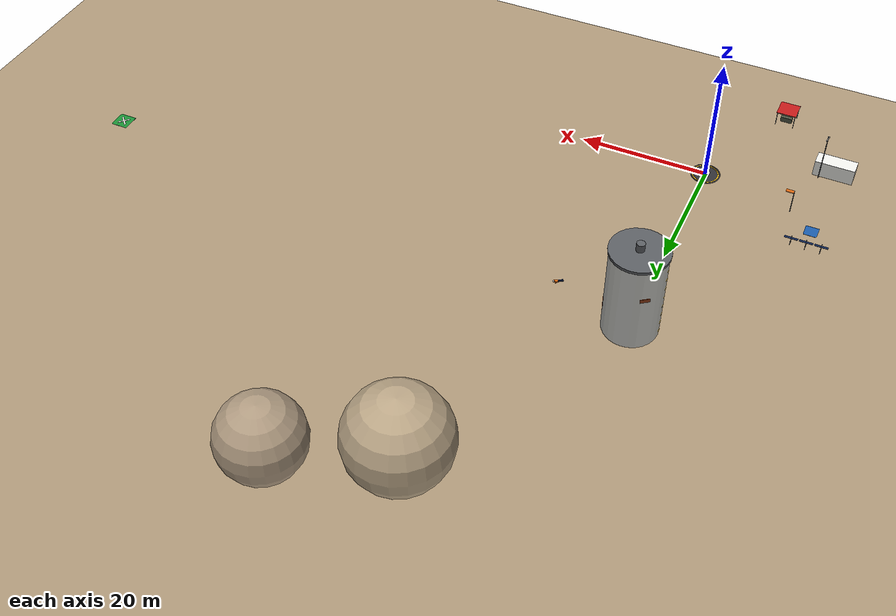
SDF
<sdf version="1.9">
 <world name="phoenix_mine">
  <model name="ground_plane">
   <static>true</static>
   <pose>0 0 -12 0 0 0</pose>
   <link name="link">
    <collision name="collision">
     <geometry><plane><normal>0 0 1</normal><size>1 1</size></plane></geometry>
    </collision>
    <visual name="visual">
     <geometry><plane><normal>0 0 1</normal><size>1500 1500</size></plane></geometry>
     <material>
      <ambient>0.66 0.58 0.46 1</ambient>
      <diffuse>0.66 0.58 0.46 1</diffuse>
      <specular>0.05 0.05 0.05 1</specular>
     </material>
    </visual>
   </link>
  </model>
  <model name="victim_thermal_target">
   <static>true</static>
   <pose>16 20 -12 0 0 0.6</pose>
   <link name="link">
    <visual name="v_box_1">
     <pose>0 0 0.12 0 0 0</pose>
     <geometry><box><size>0.55 0.36 0.22</size></box></geometry>
     <material>
      <ambient>0.950 0.450 0.080 1</ambient>
      <diffuse>0.950 0.450 0.080 1</diffuse>
      <specular>0.08 0.08 0.08 1</specular>
     </material>
     <plugin filename="gz-sim-thermal-system" name="gz::sim::systems::Thermal">
      <temperature>310.0</temperature>
     </plugin>
    </visual>
    <collision name="c_box_1">
     <pose>0 0 0.12 0 0 0</pose>
     <geometry><box><size>0.55 0.36 0.22</size></box></geometry>
    </collision>
    <visual name="v_box_2">
     <pose>-0.68 0.09 0.08 0 0 0</pose>
     <geometry><box><size>0.8 0.14 0.14</size></box></geometry>
     <material>
      <ambient>0.120 0.220 0.450 1</ambient>
      <diffuse>0.120 0.220 0.450 1</diffuse>
      <specular>0.08 0.08 0.08 1</specular>
     </material>
     <plugin filename="gz-sim-thermal-system" name="gz::sim::systems::Thermal">
      <temperature>306.0</temperature>
     </plugin>
    </visual>
    <collision name="c_box_2">
     <pose>-0.68 0.09 0.08 0 0 0</pose>
     <geometry><box><size>0.8 0.14 0.14</size></box></geometry>
    </collision>
    <visual name="v_box_3">
     <pose>-0.68 -0.09 0.08 0 0 0.12</pose>
     <geometry><box><size>0.8 0.14 0.14</size></box></geometry>
     <material>
      <ambient>0.120 0.220 0.450 1</ambient>
      <diffuse>0.120 0.220 0.450 1</diffuse>
      <specular>0.08 0.08 0.08 1</specular>
     </material>
     <plugin filename="gz-sim-thermal-system" name="gz::sim::systems::Thermal">
      <temperature>306.0</temperature>
     </plugin>
    </visual>
    <collision name="c_box_3">
     <pose>-0.68 -0.09 0.08 0 0 0.12</pose>
     <geometry><box><size>0.8 0.14 0.14</size></box></geometry>
    </collision>
    <visual name="v_box_4">
     <pose>0.05 0.27 0.07 0 0 0.3</pose>
     <geometry><box><size>0.55 0.1 0.1</size></box></geometry>
     <material>
      <ambient>0.950 0.450 0.080 1</ambient>
      <diffuse>0.950 0.450 0.080 1</diffuse>
      <specular>0.08 0.08 0.08 1</specular>
     </material>
     <plugin filename="gz-sim-thermal-system" name="gz::sim::systems::Thermal">
      <temperature>308.0</temperature>
     </plugin>
    </visual>
    <collision name="c_box_4">
     <pose>0.05 0.27 0.07 0 0 0.3</pose>
     <geometry><box><size>0.55 0.1 0.1</size></box></geometry>
    </collision>
    <visual name="v_box_5">
     <pose>0.05 -0.27 0.07 0 0 -0.2</pose>
     <geometry><box><size>0.55 0.1 0.1</size></box></geometry>
     <material>
      <ambient>0.950 0.450 0.080 1</ambient>
      <diffuse>0.950 0.450 0.080 1</diffuse>
      <specular>0.08 0.08 0.08 1</specular>
     </material>
     <plugin filename="gz-sim-thermal-system" name="gz::sim::systems::Thermal">
      <temperature>308.0</temperature>
     </plugin>
    </visual>
    <collision name="c_box_5">
     <pose>0.05 -0.27 0.07 0 0 -0.2</pose>
     <geometry><box><size>0.55 0.1 0.1</size></box></geometry>
    </collision>
    <visual name="v_sph_6">
     <pose>0.42 0 0.12 0 0 0</pose>
     <geometry><sphere><radius>0.11</radius></sphere></geometry>
     <material>
      <ambient>0.800 0.620 0.480 1</ambient>
      <diffuse>0.800 0.620 0.480 1</diffuse>
      <specular>0.08 0.08 0.08 1</specular>
     </material>
     <plugin filename="gz-sim-thermal-system" name="gz::sim::systems::Thermal">
      <temperature>310.0</temperature>
     </plugin>
    </visual>
    <collision name="c_sph_6">
     <pose>0.42 0 0.12 0 0 0</pose>
     <geometry><sphere><radius>0.11</radius></sphere></geometry>
    </collision>
    <visual name="v_sph_7">
     <pose>0.47 0 0.17 0 0 0</pose>
     <geometry><sphere><radius>0.13</radius></sphere></geometry>
     <material>
      <ambient>0.920 0.920 0.900 1</ambient>
      <diffuse>0.920 0.920 0.900 1</diffuse>
      <specular>0.08 0.08 0.08 1</specular>
     </material>
     <plugin filename="gz-sim-thermal-system" name="gz::sim::systems::Thermal">
      <temperature>300</temperature>
     </plugin>
    </visual>
    <visual name="v_box_8">
     <pose>0.6 0 0.17 0 0 0</pose>
     <geometry><box><size>0.1 0.06 0.04</size></box></geometry>
     <material>
      <ambient>0.920 0.920 0.900 1</ambient>
      <diffuse>0.920 0.920 0.900 1</diffuse>
      <specular>0.08 0.08 0.08 1</specular>
      <emissive>1.000 1.000 0.800 1</emissive>
     </material>
    </visual>
   </link>
  </model>
  <model name="surface_base">
   <static>true</static>
   <link name="link">
    <visual name="v_cyl_1">
     <pose>0 0 0.01 0 0 0</pose>
     <geometry><cylinder><radius>2.3</radius><length>0.02</length></cylinder></geometry>
     <material>
      <ambient>0.180 0.180 0.200 1</ambient>
      <diffuse>0.180 0.180 0.200 1</diffuse>
      <specular>0.08 0.08 0.08 1</specular>
     </material>
    </visual>
    <visual name="v_cyl_2">
     <pose>0 0 0.015 0 0 0</pose>
     <geometry><cylinder><radius>2.1</radius><length>0.02</length></cylinder></geometry>
     <material>
      <ambient>0.950 0.750 0.100 1</ambient>
      <diffuse>0.950 0.750 0.100 1</diffuse>
      <specular>0.08 0.08 0.08 1</specular>
     </material>
    </visual>
    <visual name="v_cyl_3">
     <pose>0 0 0.02 0 0 0</pose>
     <geometry><cylinder><radius>1.9</radius><length>0.02</length></cylinder></geometry>
     <material>
      <ambient>0.180 0.180 0.200 1</ambient>
      <diffuse>0.180 0.180 0.200 1</diffuse>
      <specular>0.08 0.08 0.08 1</specular>
     </material>
    </visual>
    <visual name="v_box_4">
     <pose>-0.45 0 0.032 0 0 0</pose>
     <geometry><box><size>0.25 1.4 0.01</size></box></geometry>
     <material>
      <ambient>0.920 0.920 0.900 1</ambient>
      <diffuse>0.920 0.920 0.900 1</diffuse>
      <specular>0.08 0.08 0.08 1</specular>
     </material>
    </visual>
    <visual name="v_box_5">
     <pose>0.45 0 0.032 0 0 0</pose>
     <geometry><box><size>0.25 1.4 0.01</size></box></geometry>
     <material>
      <ambient>0.920 0.920 0.900 1</ambient>
      <diffuse>0.920 0.920 0.900 1</diffuse>
      <specular>0.08 0.08 0.08 1</specular>
     </material>
    </visual>
    <visual name="v_box_6">
     <pose>0 0 0.032 0 0 0</pose>
     <geometry><box><size>0.65 0.22 0.01</size></box></geometry>
     <material>
      <ambient>0.920 0.920 0.900 1</ambient>
      <diffuse>0.920 0.920 0.900 1</diffuse>
      <specular>0.08 0.08 0.08 1</specular>
     </material>
    </visual>
    <visual name="v_box_7">
     <pose>-18 -8 1.3 0 0 0</pose>
     <geometry><box><size>6.1 2.4 2.6</size></box></geometry>
     <material>
      <ambient>0.920 0.920 0.900 1</ambient>
      <diffuse>0.920 0.920 0.900 1</diffuse>
      <specular>0.08 0.08 0.08 1</specular>
     </material>
    </visual>
    <collision name="c_box_7">
     <pose>-18 -8 1.3 0 0 0</pose>
     <geometry><box><size>6.1 2.4 2.6</size></box></geometry>
    </collision>
    <visual name="v_box_8">
     <pose>-14.93 -8.4 1 0 0 0</pose>
     <geometry><box><size>0.05 0.9 2</size></box></geometry>
     <material>
      <ambient>0.120 0.220 0.450 1</ambient>
      <diffuse>0.120 0.220 0.450 1</diffuse>
      <specular>0.08 0.08 0.08 1</specular>
     </material>
    </visual>
    <visual name="v_cyl_9">
     <pose>-16 -6.4 4 0 0 0</pose>
     <geometry><cylinder><radius>0.06</radius><length>8.0</length></cylinder></geometry>
     <material>
      <ambient>0.350 0.360 0.380 1</ambient>
      <diffuse>0.350 0.360 0.380 1</diffuse>
      <specular>0.08 0.08 0.08 1</specular>
     </material>
    </visual>
    <collision name="c_cyl_9">
     <pose>-16 -6.4 4 0 0 0</pose>
     <geometry><cylinder><radius>0.06</radius><length>8.0</length></cylinder></geometry>
    </collision>
    <visual name="v_cyl_10">
     <pose>-16 -6.4 7.6 0 1.2 0</pose>
     <geometry><cylinder><radius>0.4</radius><length>0.08</length></cylinder></geometry>
     <material>
      <ambient>0.920 0.920 0.900 1</ambient>
      <diffuse>0.920 0.920 0.900 1</diffuse>
      <specular>0.08 0.08 0.08 1</specular>
     </material>
    </visual>
    <collision name="c_cyl_10">
     <pose>-16 -6.4 7.6 0 1.2 0</pose>
     <geometry><cylinder><radius>0.4</radius><length>0.08</length></cylinder></geometry>
    </collision>
    <visual name="v_box_11">
     <pose>-20.2 10 1.3 0.5236 0 0</pose>
     <geometry><box><size>2 1.1 0.05</size></box></geometry>
     <material>
      <ambient>0.120 0.220 0.450 1</ambient>
      <diffuse>0.120 0.220 0.450 1</diffuse>
      <specular>0.08 0.08 0.08 1</specular>
     </material>
    </visual>
    <collision name="c_box_11">
     <pose>-20.2 10 1.3 0.5236 0 0</pose>
     <geometry><box><size>2 1.1 0.05</size></box></geometry>
    </collision>
    <visual name="v_cyl_12">
     <pose>-20.2 10.25 0.6 0 0 0</pose>
     <geometry><cylinder><radius>0.04</radius><length>1.0</length></cylinder></geometry>
     <material>
      <ambient>0.350 0.360 0.380 1</ambient>
      <diffuse>0.350 0.360 0.380 1</diffuse>
      <specular>0.08 0.08 0.08 1</specular>
     </material>
    </visual>
    <collision name="c_cyl_12">
     <pose>-20.2 10.25 0.6 0 0 0</pose>
     <geometry><cylinder><radius>0.04</radius><length>1.0</length></cylinder></geometry>
    </collision>
    <visual name="v_cyl_13">
     <pose>-20.2 9.75 0.8 0 0 0</pose>
     <geometry><cylinder><radius>0.04</radius><length>1.4</length></cylinder></geometry>
     <material>
      <ambient>0.350 0.360 0.380 1</ambient>
      <diffuse>0.350 0.360 0.380 1</diffuse>
      <specular>0.08 0.08 0.08 1</specular>
     </material>
    </visual>
    <collision name="c_cyl_13">
     <pose>-20.2 9.75 0.8 0 0 0</pose>
     <geometry><cylinder><radius>0.04</radius><length>1.4</length></cylinder></geometry>
    </collision>
    <visual name="v_box_14">
     <pose>-18 10 1.3 0.5236 0 0</pose>
     <geometry><box><size>2 1.1 0.05</size></box></geometry>
     <material>
      <ambient>0.120 0.220 0.450 1</ambient>
      <diffuse>0.120 0.220 0.450 1</diffuse>
      <specular>0.08 0.08 0.08 1</specular>
     </material>
    </visual>
    <collision name="c_box_14">
     <pose>-18 10 1.3 0.5236 0 0</pose>
     <geometry><box><size>2 1.1 0.05</size></box></geometry>
    </collision>
    <visual name="v_cyl_15">
     <pose>-18 10.25 0.6 0 0 0</pose>
     <geometry><cylinder><radius>0.04</radius><length>1.0</length></cylinder></geometry>
     <material>
      <ambient>0.350 0.360 0.380 1</ambient>
      <diffuse>0.350 0.360 0.380 1</diffuse>
      <specular>0.08 0.08 0.08 1</specular>
     </material>
    </visual>
    <collision name="c_cyl_15">
     <pose>-18 10.25 0.6 0 0 0</pose>
     <geometry><cylinder><radius>0.04</radius><length>1.0</length></cylinder></geometry>
    </collision>
    <visual name="v_cyl_16">
     <pose>-18 9.75 0.8 0 0 0</pose>
     <geometry><cylinder><radius>0.04</radius><length>1.4</length></cylinder></geometry>
     <material>
      <ambient>0.350 0.360 0.380 1</ambient>
      <diffuse>0.350 0.360 0.380 1</diffuse>
      <specular>0.08 0.08 0.08 1</specular>
     </material>
    </visual>
    <collision name="c_cyl_16">
     <pose>-18 9.75 0.8 0 0 0</pose>
     <geometry><cylinder><radius>0.04</radius><length>1.4</length></cylinder></geometry>
    </collision>
    <visual name="v_box_17">
     <pose>-15.8 10 1.3 0.5236 0 0</pose>
     <geometry><box><size>2 1.1 0.05</size></box></geometry>
     <material>
      <ambient>0.120 0.220 0.450 1</ambient>
      <diffuse>0.120 0.220 0.450 1</diffuse>
      <specular>0.08 0.08 0.08 1</specular>
     </material>
    </visual>
    <collision name="c_box_17">
     <pose>-15.8 10 1.3 0.5236 0 0</pose>
     <geometry><box><size>2 1.1 0.05</size></box></geometry>
    </collision>
    <visual name="v_cyl_18">
     <pose>-15.8 10.25 0.6 0 0 0</pose>
     <geometry><cylinder><radius>0.04</radius><length>1.0</length></cylinder></geometry>
     <material>
      <ambient>0.350 0.360 0.380 1</ambient>
      <diffuse>0.350 0.360 0.380 1</diffuse>
      <specular>0.08 0.08 0.08 1</specular>
     </material>
    </visual>
    <collision name="c_cyl_18">
     <pose>-15.8 10.25 0.6 0 0 0</pose>
     <geometry><cylinder><radius>0.04</radius><length>1.0</length></cylinder></geometry>
    </collision>
    <visual name="v_cyl_19">
     <pose>-15.8 9.75 0.8 0 0 0</pose>
     <geometry><cylinder><radius>0.04</radius><length>1.4</length></cylinder></geometry>
     <material>
      <ambient>0.350 0.360 0.380 1</ambient>
      <diffuse>0.350 0.360 0.380 1</diffuse>
      <specular>0.08 0.08 0.08 1</specular>
     </material>
    </visual>
    <collision name="c_cyl_19">
     <pose>-15.8 9.75 0.8 0 0 0</pose>
     <geometry><cylinder><radius>0.04</radius><length>1.4</length></cylinder></geometry>
    </collision>
    <visual name="v_box_20">
     <pose>-18 6 0.01 0 0 0</pose>
     <geometry><box><size>2 2 0.02</size></box></geometry>
     <material>
      <ambient>0.100 0.350 0.650 1</ambient>
      <diffuse>0.100 0.350 0.650 1</diffuse>
      <specular>0.08 0.08 0.08 1</specular>
     </material>
    </visual>
    <visual name="v_cyl_21">
     <pose>-9.4 -19.4 1.15 0 0 0</pose>
     <geometry><cylinder><radius>0.04</radius><length>2.3</length></cylinder></geometry>
     <material>
      <ambient>0.350 0.360 0.380 1</ambient>
      <diffuse>0.350 0.360 0.380 1</diffuse>
      <specular>0.08 0.08 0.08 1</specular>
     </material>
    </visual>
    <collision name="c_cyl_21">
     <pose>-9.4 -19.4 1.15 0 0 0</pose>
     <geometry><cylinder><radius>0.04</radius><length>2.3</length></cylinder></geometry>
    </collision>
    <visual name="v_cyl_22">
     <pose>-9.4 -16.6 1.15 0 0 0</pose>
     <geometry><cylinder><radius>0.04</radius><length>2.3</length></cylinder></geometry>
     <material>
      <ambient>0.350 0.360 0.380 1</ambient>
      <diffuse>0.350 0.360 0.380 1</diffuse>
      <specular>0.08 0.08 0.08 1</specular>
     </material>
    </visual>
    <collision name="c_cyl_22">
     <pose>-9.4 -16.6 1.15 0 0 0</pose>
     <geometry><cylinder><radius>0.04</radius><length>2.3</length></cylinder></geometry>
    </collision>
    <visual name="v_cyl_23">
     <pose>-6.6 -19.4 1.15 0 0 0</pose>
     <geometry><cylinder><radius>0.04</radius><length>2.3</length></cylinder></geometry>
     <material>
      <ambient>0.350 0.360 0.380 1</ambient>
      <diffuse>0.350 0.360 0.380 1</diffuse>
      <specular>0.08 0.08 0.08 1</specular>
     </material>
    </visual>
    <collision name="c_cyl_23">
     <pose>-6.6 -19.4 1.15 0 0 0</pose>
     <geometry><cylinder><radius>0.04</radius><length>2.3</length></cylinder></geometry>
    </collision>
    <visual name="v_cyl_24">
     <pose>-6.6 -16.6 1.15 0 0 0</pose>
     <geometry><cylinder><radius>0.04</radius><length>2.3</length></cylinder></geometry>
     <material>
      <ambient>0.350 0.360 0.380 1</ambient>
      <diffuse>0.350 0.360 0.380 1</diffuse>
      <specular>0.08 0.08 0.08 1</specular>
     </material>
    </visual>
    <collision name="c_cyl_24">
     <pose>-6.6 -16.6 1.15 0 0 0</pose>
     <geometry><cylinder><radius>0.04</radius><length>2.3</length></cylinder></geometry>
    </collision>
    <visual name="v_box_25">
     <pose>-8 -18 2.35 0 0 0</pose>
     <geometry><box><size>3.1 3.1 0.1</size></box></geometry>
     <material>
      <ambient>0.750 0.100 0.100 1</ambient>
      <diffuse>0.750 0.100 0.100 1</diffuse>
      <specular>0.08 0.08 0.08 1</specular>
     </material>
    </visual>
    <collision name="c_box_25">
     <pose>-8 -18 2.35 0 0 0</pose>
     <geometry><box><size>3.1 3.1 0.1</size></box></geometry>
    </collision>
    <visual name="v_box_26">
     <pose>-8 -18 0.4 0 0 0</pose>
     <geometry><box><size>1.8 0.6 0.8</size></box></geometry>
     <material>
      <ambient>0.300 0.320 0.250 1</ambient>
      <diffuse>0.300 0.320 0.250 1</diffuse>
      <specular>0.08 0.08 0.08 1</specular>
     </material>
    </visual>
    <collision name="c_box_26">
     <pose>-8 -18 0.4 0 0 0</pose>
     <geometry><box><size>1.8 0.6 0.8</size></box></geometry>
    </collision>
    <visual name="v_cyl_27">
     <pose>-14 3 2 0 0 0</pose>
     <geometry><cylinder><radius>0.05</radius><length>4.0</length></cylinder></geometry>
     <material>
      <ambient>0.350 0.360 0.380 1</ambient>
      <diffuse>0.350 0.360 0.380 1</diffuse>
      <specular>0.08 0.08 0.08 1</specular>
     </material>
    </visual>
    <collision name="c_cyl_27">
     <pose>-14 3 2 0 0 0</pose>
     <geometry><cylinder><radius>0.05</radius><length>4.0</length></cylinder></geometry>
    </collision>
    <visual name="v_cyl_28">
     <pose>-13.4 3 3.8 0 1.571 0</pose>
     <geometry><cylinder><radius>0.22</radius><length>1.2</length></cylinder></geometry>
     <material>
      <ambient>0.950 0.450 0.080 1</ambient>
      <diffuse>0.950 0.450 0.080 1</diffuse>
      <specular>0.08 0.08 0.08 1</specular>
     </material>
    </visual>
   </link>
  </model>
  <model name="inspection_silo">
   <static>true</static>
   <pose>0 35 0 0 0 0</pose>
   <link name="link">
    <visual name="v_cyl_1">
     <pose>0 0 7 0 0 0</pose>
     <geometry><cylinder><radius>4.0</radius><length>14.0</length></cylinder></geometry>
     <material>
      <ambient>0.800 0.800 0.780 1</ambient>
      <diffuse>0.800 0.800 0.780 1</diffuse>
      <specular>0.08 0.08 0.08 1</specular>
     </material>
    </visual>
    <collision name="c_cyl_1">
     <pose>0 0 7 0 0 0</pose>
     <geometry><cylinder><radius>4.0</radius><length>14.0</length></cylinder></geometry>
    </collision>
    <visual name="v_cyl_2">
     <pose>0 0 14.2 0 0 0</pose>
     <geometry><cylinder><radius>4.2</radius><length>0.4</length></cylinder></geometry>
     <material>
      <ambient>0.350 0.360 0.380 1</ambient>
      <diffuse>0.350 0.360 0.380 1</diffuse>
      <specular>0.08 0.08 0.08 1</specular>
     </material>
    </visual>
    <collision name="c_cyl_2">
     <pose>0 0 14.2 0 0 0</pose>
     <geometry><cylinder><radius>4.2</radius><length>0.4</length></cylinder></geometry>
    </collision>
    <visual name="v_cyl_3">
     <pose>0 0 15 0 0 0</pose>
     <geometry><cylinder><radius>0.6</radius><length>1.2</length></cylinder></geometry>
     <material>
      <ambient>0.350 0.360 0.380 1</ambient>
      <diffuse>0.350 0.360 0.380 1</diffuse>
      <specular>0.08 0.08 0.08 1</specular>
     </material>
    </visual>
    <collision name="c_cyl_3">
     <pose>0 0 15 0 0 0</pose>
     <geometry><cylinder><radius>0.6</radius><length>1.2</length></cylinder></geometry>
    </collision>
    <visual name="v_box_4">
     <pose>3.821 1.182 4 0 0 0.3</pose>
     <geometry><box><size>0.04 0.9 1.6</size></box></geometry>
     <material>
      <ambient>0.550 0.220 0.080 1</ambient>
      <diffuse>0.550 0.220 0.080 1</diffuse>
      <specular>0.08 0.08 0.08 1</specular>
     </material>
    </visual>
    <visual name="v_box_5">
     <pose>-2.354 3.234 9 0 0 2.2</pose>
     <geometry><box><size>0.04 1.4 0.6</size></box></geometry>
     <material>
      <ambient>0.550 0.220 0.080 1</ambient>
      <diffuse>0.550 0.220 0.080 1</diffuse>
      <specular>0.08 0.08 0.08 1</specular>
     </material>
    </visual>
    <visual name="v_box_6">
     <pose>-2.615 -3.027 6 0 0 4</pose>
     <geometry><box><size>0.04 0.5 2.2</size></box></geometry>
     <material>
      <ambient>0.550 0.220 0.080 1</ambient>
      <diffuse>0.550 0.220 0.080 1</diffuse>
      <specular>0.08 0.08 0.08 1</specular>
     </material>
    </visual>
    <visual name="v_box_7">
     <pose>-4.05 0 1 0 0 0</pose>
     <geometry><box><size>0.05 0.6 0.04</size></box></geometry>
     <material>
      <ambient>0.950 0.750 0.100 1</ambient>
      <diffuse>0.950 0.750 0.100 1</diffuse>
      <specular>0.08 0.08 0.08 1</specular>
     </material>
    </visual>
    <visual name="v_box_8">
     <pose>-4.05 0 2.6 0 0 0</pose>
     <geometry><box><size>0.05 0.6 0.04</size></box></geometry>
     <material>
      <ambient>0.950 0.750 0.100 1</ambient>
      <diffuse>0.950 0.750 0.100 1</diffuse>
      <specular>0.08 0.08 0.08 1</specular>
     </material>
    </visual>
    <visual name="v_box_9">
     <pose>-4.05 0 4.2 0 0 0</pose>
     <geometry><box><size>0.05 0.6 0.04</size></box></geometry>
     <material>
      <ambient>0.950 0.750 0.100 1</ambient>
      <diffuse>0.950 0.750 0.100 1</diffuse>
      <specular>0.08 0.08 0.08 1</specular>
     </material>
    </visual>
    <visual name="v_box_10">
     <pose>-4.05 0 5.8 0 0 0</pose>
     <geometry><box><size>0.05 0.6 0.04</size></box></geometry>
     <material>
      <ambient>0.950 0.750 0.100 1</ambient>
      <diffuse>0.950 0.750 0.100 1</diffuse>
      <specular>0.08 0.08 0.08 1</specular>
     </material>
    </visual>
    <visual name="v_box_11">
     <pose>-4.05 0 7.4 0 0 0</pose>
     <geometry><box><size>0.05 0.6 0.04</size></box></geometry>
     <material>
      <ambient>0.950 0.750 0.100 1</ambient>
      <diffuse>0.950 0.750 0.100 1</diffuse>
      <specular>0.08 0.08 0.08 1</specular>
     </material>
    </visual>
    <visual name="v_box_12">
     <pose>-4.05 0 9 0 0 0</pose>
     <geometry><box><size>0.05 0.6 0.04</size></box></geometry>
     <material>
      <ambient>0.950 0.750 0.100 1</ambient>
      <diffuse>0.950 0.750 0.100 1</diffuse>
      <specular>0.08 0.08 0.08 1</specular>
     </material>
    </visual>
    <visual name="v_box_13">
     <pose>-4.05 0 10.6 0 0 0</pose>
     <geometry><box><size>0.05 0.6 0.04</size></box></geometry>
     <material>
      <ambient>0.950 0.750 0.100 1</ambient>
      <diffuse>0.950 0.750 0.100 1</diffuse>
      <specular>0.08 0.08 0.08 1</specular>
     </material>
    </visual>
    <visual name="v_box_14">
     <pose>-4.05 0 12.2 0 0 0</pose>
     <geometry><box><size>0.05 0.6 0.04</size></box></geometry>
     <material>
      <ambient>0.950 0.750 0.100 1</ambient>
      <diffuse>0.950 0.750 0.100 1</diffuse>
      <specular>0.08 0.08 0.08 1</specular>
     </material>
    </visual>
   </link>
  </model>
  <model name="phosphate_stockpiles">
   <static>true</static>
   <link name="link">
    <visual name="v_sph_1">
     <pose>22 62 -5 0 0 0</pose>
     <geometry><sphere><radius>8.0</radius></sphere></geometry>
     <material>
      <ambient>0.720 0.640 0.520 1</ambient>
      <diffuse>0.720 0.640 0.520 1</diffuse>
      <specular>0.08 0.08 0.08 1</specular>
     </material>
    </visual>
    <collision name="c_sph_1">
     <pose>22 62 -5 0 0 0</pose>
     <geometry><sphere><radius>8.0</radius></sphere></geometry>
    </collision>
    <visual name="v_sph_2">
     <pose>38 70 -4.2 0 0 0</pose>
     <geometry><sphere><radius>6.5</radius></sphere></geometry>
     <material>
      <ambient>0.680 0.600 0.500 1</ambient>
      <diffuse>0.680 0.600 0.500 1</diffuse>
      <specular>0.08 0.08 0.08 1</specular>
     </material>
    </visual>
    <collision name="c_sph_2">
     <pose>38 70 -4.2 0 0 0</pose>
     <geometry><sphere><radius>6.5</radius></sphere></geometry>
    </collision>
   </link>
  </model>
  <model name="safe_point_pit_floor">
   <static>true</static>
   <link name="link">
    <visual name="v_box_1">
     <pose>100 15 -11.99 0 0 0</pose>
     <geometry><box><size>3 3 0.02</size></box></geometry>
     <material>
      <ambient>0.100 0.550 0.200 1</ambient>
      <diffuse>0.100 0.550 0.200 1</diffuse>
      <specular>0.08 0.08 0.08 1</specular>
     </material>
    </visual>
    <visual name="v_box_2">
     <pose>100 15 -11.97 0 0 0.785</pose>
     <geometry><box><size>2.2 0.3 0.01</size></box></geometry>
     <material>
      <ambient>0.920 0.920 0.900 1</ambient>
      <diffuse>0.920 0.920 0.900 1</diffuse>
      <specular>0.08 0.08 0.08 1</specular>
     </material>
    </visual>
    <visual name="v_box_3">
     <pose>100 15 -11.97 0 0 -0.785</pose>
     <geometry><box><size>2.2 0.3 0.01</size></box></geometry>
     <material>
      <ambient>0.920 0.920 0.900 1</ambient>
      <diffuse>0.920 0.920 0.900 1</diffuse>
      <specular>0.08 0.08 0.08 1</specular>
     </material>
    </visual>
   </link>
  </model>
 </world>
</sdf>
